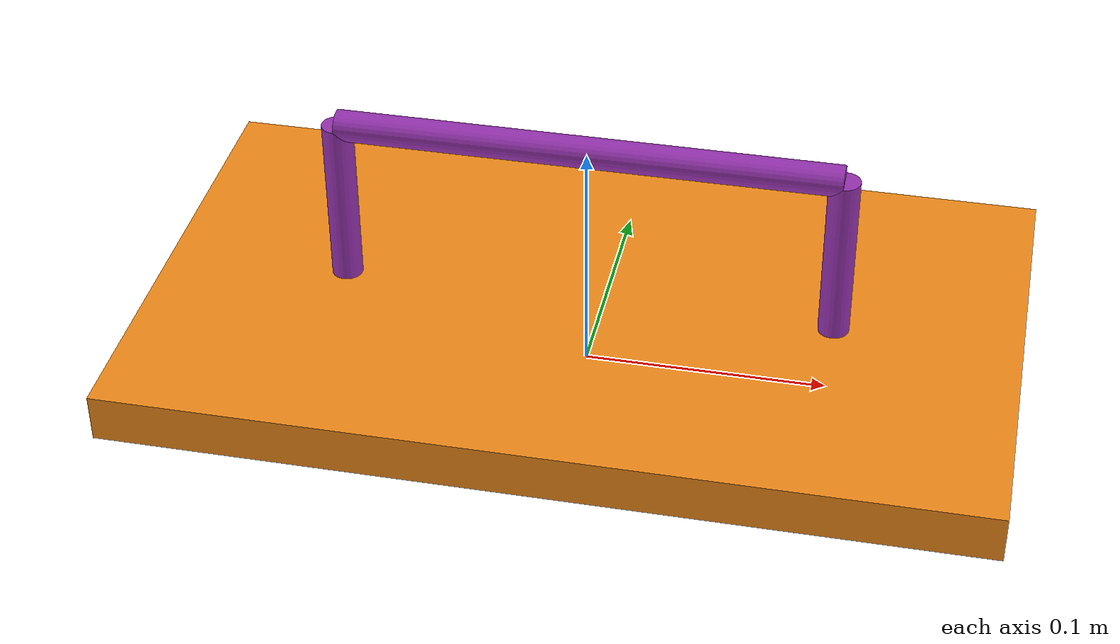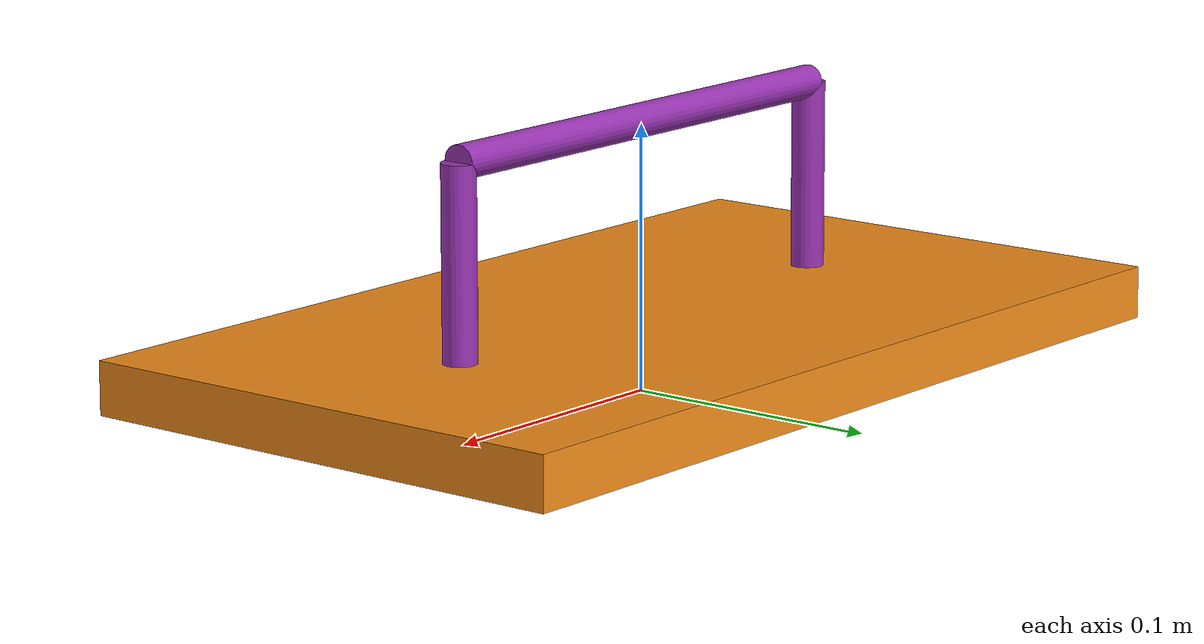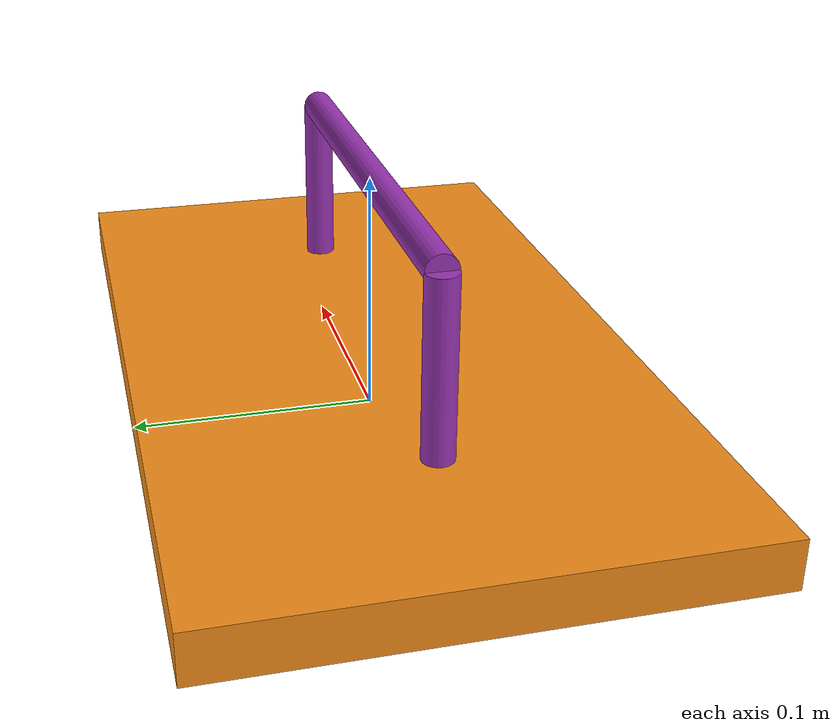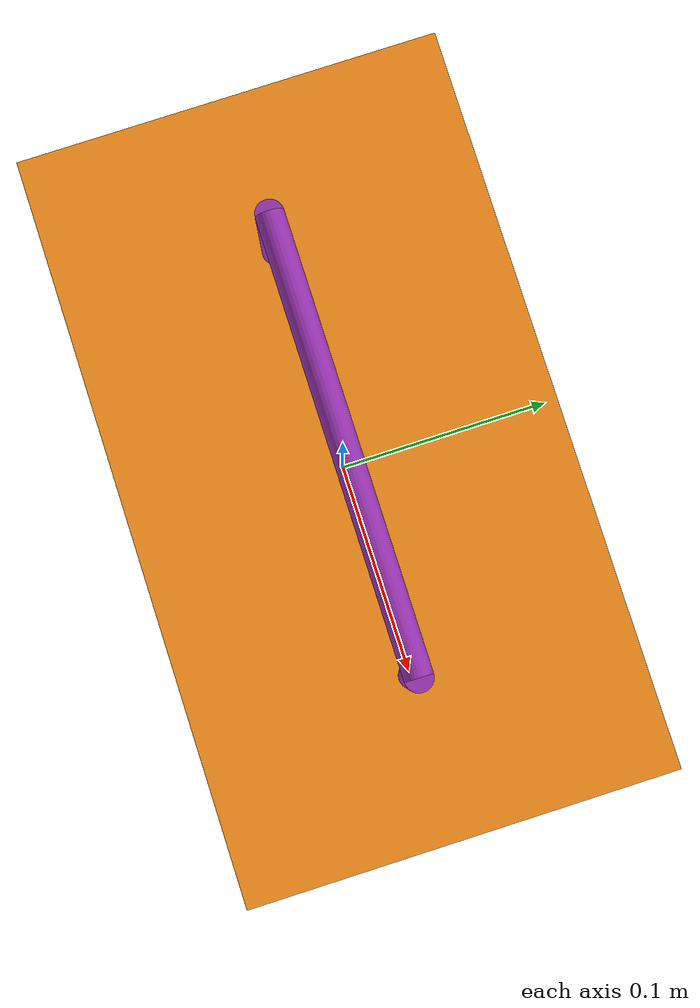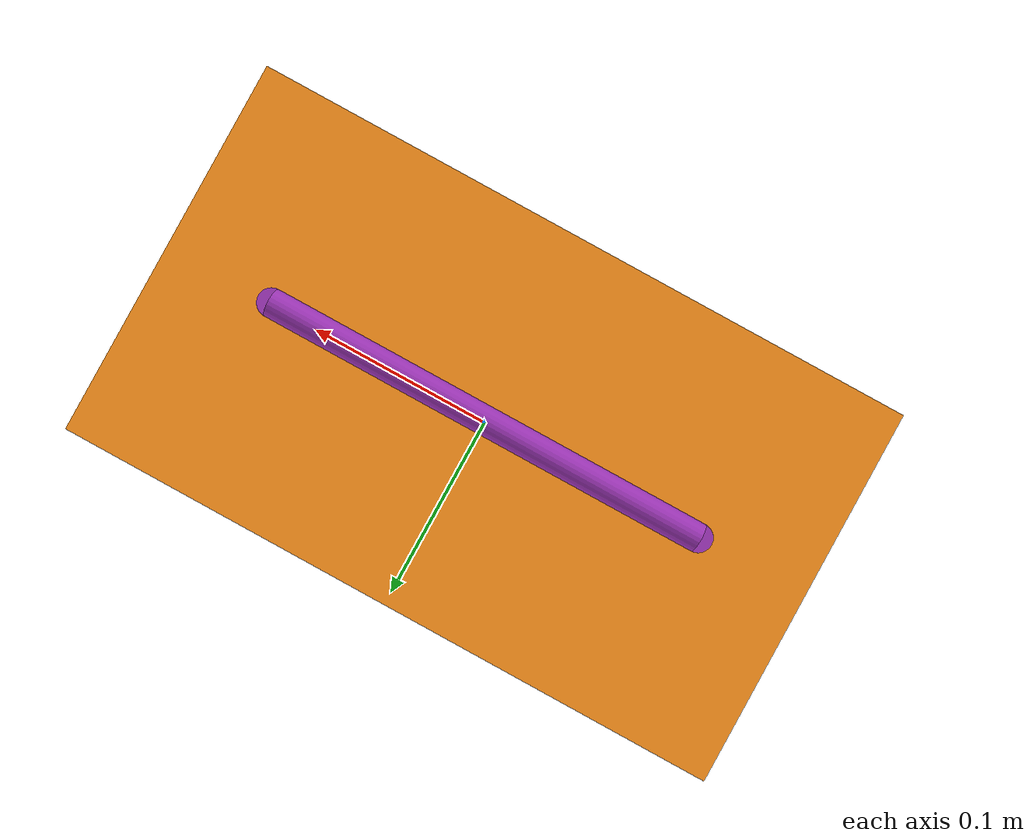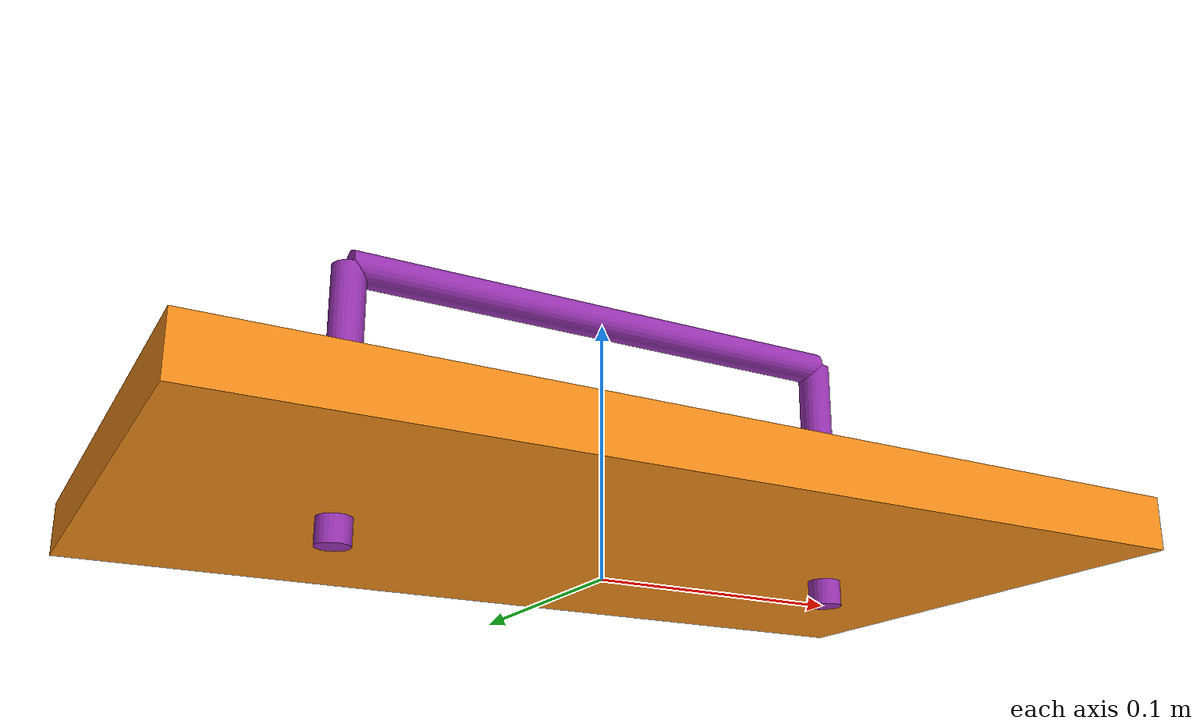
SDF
<?xml version="1.0"?>
<sdf version="1.11">  <model name="robosub_bin_cover">
    <link name="cover">
      <inertial>
        <mass>0.1</mass>
        <inertia>
          <ixx>0.0004</ixx>
          <ixy>0</ixy>
          <ixz>0</ixz>
          <iyy>0.001</iyy>
          <iyz>0</iyz>
          <izz>0.001</izz>
        </inertia>
      </inertial>

      <visual name="top">
        <pose>0 0 0.02 0 0 0</pose>
        <geometry>
          <box>
            <size>0.3556 0.2032 0.02</size>
          </box>
        </geometry>
        <material>
          <script>
            <uri>file://media/materials/scripts/gazebo.material</uri>
            <name>Gazebo/Orange</name>
          </script>
        </material>
      </visual>

      <collision name="top_collide">
        <pose>0 0 0.02 0 0 0</pose>
        <geometry>
          <box>
            <size>0.3556 0.2032 0.02</size>
          </box>
        </geometry>
      </collision>

      <visual name="htop">
        <pose>0 0 0.1016 1.5707 0 1.5707</pose>
        <geometry>
          <cylinder>
            <radius>0.00635</radius>
            <length>0.2032</length>
          </cylinder>
        </geometry>
        <material>
          <script>
            <uri>file://media/materials/scripts/gazebo.material</uri>
            <name>Gazebo/Purple</name>
          </script>
        </material>
      </visual>

      <collision name="htop_collide">
        <pose>0 0 0.1016 1.5707 0 1.5707</pose>
        <geometry>
          <cylinder>
            <radius>0.00635</radius>
            <length>0.2032</length>
          </cylinder>
        </geometry>
      </collision>

      <visual name="u1">
        <pose>0.1016 0 0.0508 0 0 0</pose>
        <geometry>
          <cylinder>
            <radius>0.00635</radius>
            <length>0.1016</length>
          </cylinder>
        </geometry>
        <material>
          <script>
            <uri>file://media/materials/scripts/gazebo.material</uri>
            <name>Gazebo/Purple</name>
          </script>
        </material>
      </visual>

      <collision name="u1_collide">
        <pose>0.1016 0 0.0508 0 0 0</pose>
        <geometry>
          <cylinder>
            <radius>0.00635</radius>
            <length>0.1016</length>
          </cylinder>
        </geometry>
      </collision>

      <visual name="u2">
        <pose>-0.1016 0 0.0508 0 0 0</pose>
        <geometry>
          <cylinder>
            <radius>0.00635</radius>
            <length>0.1016</length>
          </cylinder>
        </geometry>
        <material>
          <script>
            <uri>file://media/materials/scripts/gazebo.material</uri>
            <name>Gazebo/Purple</name>
          </script>
        </material>
      </visual>

      <collision name="u2_collide">
        <pose>-0.1016 0 0.0508 0 0 0</pose>
        <geometry>
          <cylinder>
            <radius>0.00635</radius>
            <length>0.1016</length>
          </cylinder>
        </geometry>
      </collision>
    </link>
  </model>
</sdf>
